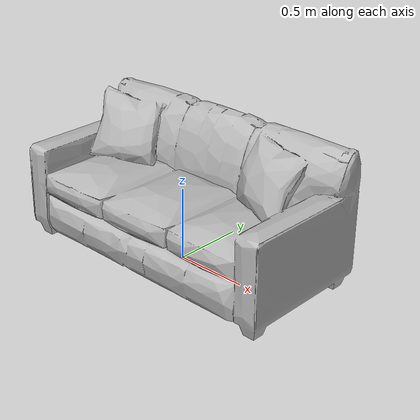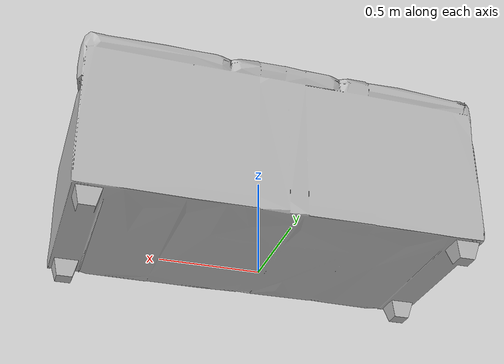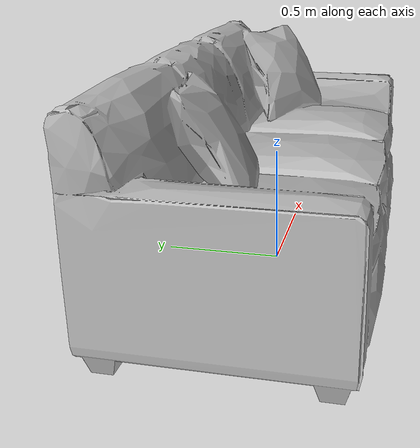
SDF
<sdf version="1.6">
	<model name="Sofas_O6bd3c99ebbf0_lod0">
		<link name="main_link">
			<visual name="visual_RootNode">
				<geometry>
					<mesh>
						<uri>model://Sofas_O6bd3c99ebbf0_lod0/meshes/visual_RootNode.dae</uri>
					</mesh>
				</geometry>
			</visual>
			<collision name="collision_RootNode_lod0_0">
				<geometry>
					<mesh>
						<uri>model://Sofas_O6bd3c99ebbf0_lod0/meshes/collision_RootNode_lod0_0.dae</uri>
					</mesh>
				</geometry>
			</collision>
		</link>
	</model>
</sdf>
